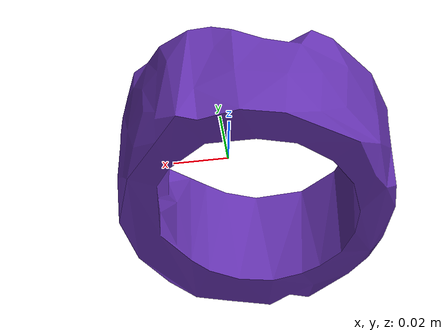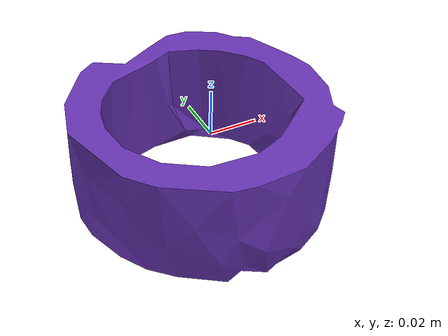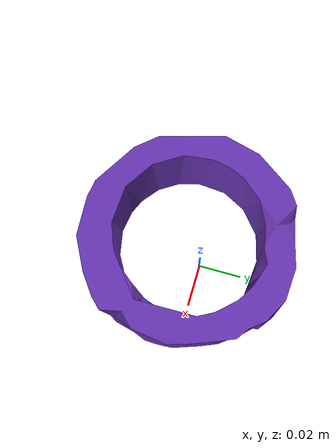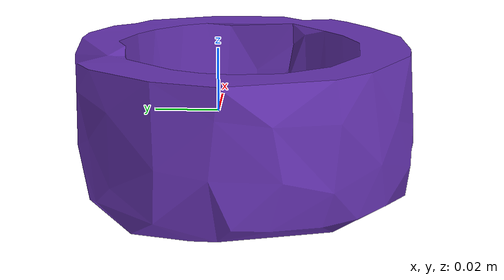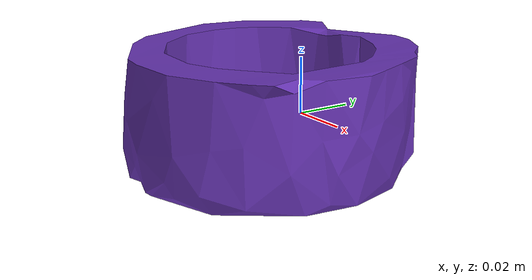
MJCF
<mujoco model="top_watertight_tiny">

  <asset>
    <mesh file="top_watertight_tiny.obj"/>
    <mesh file="top_watertight_tiny_collision_0.obj"/>
    <mesh file="top_watertight_tiny_collision_1.obj"/>
    <mesh file="top_watertight_tiny_collision_2.obj"/>
    <mesh file="top_watertight_tiny_collision_3.obj"/>
    <mesh file="top_watertight_tiny_collision_4.obj"/>
    <mesh file="top_watertight_tiny_collision_5.obj"/>
    <mesh file="top_watertight_tiny_collision_6.obj"/>
    <mesh file="top_watertight_tiny_collision_7.obj"/>
    <mesh file="top_watertight_tiny_collision_8.obj"/>
    <mesh file="top_watertight_tiny_collision_9.obj"/>
    <mesh file="top_watertight_tiny_collision_10.obj"/>
    <mesh file="top_watertight_tiny_collision_11.obj"/>
    <mesh file="top_watertight_tiny_collision_12.obj"/>
    <mesh file="top_watertight_tiny_collision_13.obj"/>
    <mesh file="top_watertight_tiny_collision_14.obj"/>
    <mesh file="top_watertight_tiny_collision_15.obj"/>
    <mesh file="top_watertight_tiny_collision_16.obj"/>
    <mesh file="top_watertight_tiny_collision_17.obj"/>
  </asset>
  <worldbody>
    <body name="top_watertight_tiny">
      <freejoint/>
      <geom solimp="0.90 0.95 0.001" solref="0.02 1.0" density="100" friction="0.95 0.4 0.3" rgba="0.4 0.2 0.7 1" mesh="top_watertight_tiny" group="2" type="mesh" contype="0" conaffinity="0"/>
      <geom solimp="0.90 0.95 0.001" solref="0.02 1.0" density="100" friction="0.95 0.4 0.3" mesh="top_watertight_tiny_collision_0" rgba="0.15149720927510535 0.06340309467695648 0.7577785163685546 1" group="3" type="mesh"/>
      <geom solimp="0.90 0.95 0.001" solref="0.02 1.0" density="100" friction="0.95 0.4 0.3" mesh="top_watertight_tiny_collision_1" rgba="0.7937133920285416 0.8349319967240061 0.11528620296322434 1" group="3" type="mesh"/>
      <geom solimp="0.90 0.95 0.001" solref="0.02 1.0" density="100" friction="0.95 0.4 0.3" mesh="top_watertight_tiny_collision_2" rgba="0.5155066516299357 0.7390787469071591 0.2870305795386986 1" group="3" type="mesh"/>
      <geom solimp="0.90 0.95 0.001" solref="0.02 1.0" density="100" friction="0.95 0.4 0.3" mesh="top_watertight_tiny_collision_3" rgba="0.9934898759934074 0.3031035624007341 0.15962023221152755 1" group="3" type="mesh"/>
      <geom solimp="0.90 0.95 0.001" solref="0.02 1.0" density="100" friction="0.95 0.4 0.3" mesh="top_watertight_tiny_collision_4" rgba="0.39521634633652925 0.7358651043347294 0.36847867182357485 1" group="3" type="mesh"/>
      <geom solimp="0.90 0.95 0.001" solref="0.02 1.0" density="100" friction="0.95 0.4 0.3" mesh="top_watertight_tiny_collision_5" rgba="0.0978898692845187 0.1258733797175552 0.004546892064317465 1" group="3" type="mesh"/>
      <geom solimp="0.90 0.95 0.001" solref="0.02 1.0" density="100" friction="0.95 0.4 0.3" mesh="top_watertight_tiny_collision_6" rgba="0.20344435016336748 0.41133486156540544 0.3712606116910724 1" group="3" type="mesh"/>
      <geom solimp="0.90 0.95 0.001" solref="0.02 1.0" density="100" friction="0.95 0.4 0.3" mesh="top_watertight_tiny_collision_7" rgba="0.4949240073416399 0.9043017650758485 0.781171956959787 1" group="3" type="mesh"/>
      <geom solimp="0.90 0.95 0.001" solref="0.02 1.0" density="100" friction="0.95 0.4 0.3" mesh="top_watertight_tiny_collision_8" rgba="0.7768829270057013 0.1932929046547993 0.0647271184382806 1" group="3" type="mesh"/>
      <geom solimp="0.90 0.95 0.001" solref="0.02 1.0" density="100" friction="0.95 0.4 0.3" mesh="top_watertight_tiny_collision_9" rgba="0.11770220989826152 0.12797367924799385 0.08434954981762732 1" group="3" type="mesh"/>
      <geom solimp="0.90 0.95 0.001" solref="0.02 1.0" density="100" friction="0.95 0.4 0.3" mesh="top_watertight_tiny_collision_10" rgba="0.11874710205317995 0.08624901804032148 0.907904196624476 1" group="3" type="mesh"/>
      <geom solimp="0.90 0.95 0.001" solref="0.02 1.0" density="100" friction="0.95 0.4 0.3" mesh="top_watertight_tiny_collision_11" rgba="0.06156838797961994 0.6277468627518048 0.9134279147796939 1" group="3" type="mesh"/>
      <geom solimp="0.90 0.95 0.001" solref="0.02 1.0" density="100" friction="0.95 0.4 0.3" mesh="top_watertight_tiny_collision_12" rgba="0.6769392883874648 0.48610602641295153 0.6804537881382822 1" group="3" type="mesh"/>
      <geom solimp="0.90 0.95 0.001" solref="0.02 1.0" density="100" friction="0.95 0.4 0.3" mesh="top_watertight_tiny_collision_13" rgba="0.46479245917913947 0.8882737113271778 0.15237264984082333 1" group="3" type="mesh"/>
      <geom solimp="0.90 0.95 0.001" solref="0.02 1.0" density="100" friction="0.95 0.4 0.3" mesh="top_watertight_tiny_collision_14" rgba="0.9745214181843362 0.4159160678285351 0.0796932183384641 1" group="3" type="mesh"/>
      <geom solimp="0.90 0.95 0.001" solref="0.02 1.0" density="100" friction="0.95 0.4 0.3" mesh="top_watertight_tiny_collision_15" rgba="0.559753613310336 0.44533282214559167 0.888683859169414 1" group="3" type="mesh"/>
      <geom solimp="0.90 0.95 0.001" solref="0.02 1.0" density="100" friction="0.95 0.4 0.3" mesh="top_watertight_tiny_collision_16" rgba="0.0847037315597493 0.608653887325666 0.9424821850871798 1" group="3" type="mesh"/>
      <geom solimp="0.90 0.95 0.001" solref="0.02 1.0" density="100" friction="0.95 0.4 0.3" mesh="top_watertight_tiny_collision_17" rgba="0.902332450614758 0.985156473340799 0.1772975067461503 1" group="3" type="mesh"/>
    </body>
  </worldbody>
</mujoco>
